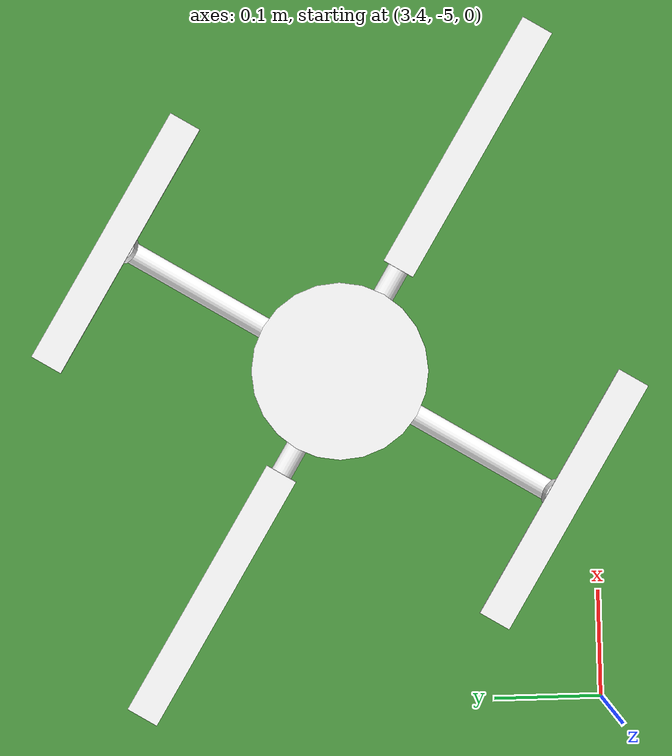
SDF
<sdf version="1.7">
 <world name="mrsim">
  <model name="ground_plane">
   <static>1</static>
   <link name="link">
    <collision name="collision">
     <geometry><plane><normal>0 0 1</normal><size>5000 5000</size></plane></geometry>
     <surface><friction><ode><mu>1</mu><mu2>1</mu2></ode></friction></surface>
    </collision>
    <visual name="grass">
     <cast_shadows>0</cast_shadows>
     <geometry><plane><normal>0 0 1</normal><size>5000 5000</size></plane></geometry>
     <material>
      <script><uri>file://media/materials/scripts/gazebo.material</uri><name>Gazebo/Grass</name></script>
     </material>
    </visual>
   </link>
  </model>
  <model name="quad1">
   <link name="base">
    <inertial>
     <mass>1</mass>
     <inertia><ixx>0.015</ixx><ixy>0</ixy><ixz>0</ixz><iyy>0.015</iyy><iyz>0</iyz><izz>0.007</izz></inertia>
    </inertial>
    <collision name="base">
     <geometry><cylinder><radius>0.1</radius><length>0.05</length></cylinder></geometry>
    </collision>
    <collision name="land_1">
     <pose>0.1 0 0 0 -0 0</pose>
     <geometry><sphere><radius>0.03</radius></sphere></geometry>
    </collision>
    <collision name="land_2">
     <pose>-0.05 0.086 0 0 -0 0</pose>
     <geometry><sphere><radius>0.03</radius></sphere></geometry>
    </collision>
    <collision name="land_3">
     <pose>-0.05 -0.086 0 0 -0 0</pose>
     <geometry><sphere><radius>0.03</radius></sphere></geometry>
    </collision>
    <visual name="body">
     <geometry><cylinder><radius>0.08</radius><length>0.05</length></cylinder></geometry>
     <material><ambient>1 0.6 0.4 1</ambient><diffuse>1 1 1 1</diffuse></material>
    </visual>
    <visual name="arm-1">
     <pose>0.125 0 0 3.14159 1.57079 3.14159</pose>
     <geometry><cylinder><radius>0.01</radius><length>0.25</length></cylinder></geometry>
     <material><ambient>1 0.4 0.4 1</ambient><diffuse>1 1 1 1</diffuse></material>
    </visual>
    <visual name="arm-2">
     <pose>0 0.125 0 3.14159 1.57079 -1.57079</pose>
     <geometry><cylinder><radius>0.01</radius><length>0.25</length></cylinder></geometry>
     <material><ambient>0.6 0.6 0.6 1</ambient><diffuse>1 1 1 1</diffuse></material>
    </visual>
    <visual name="arm-3">
     <pose>-0.125 0 0 3.14159 1.57079 3.14159</pose>
     <geometry><cylinder><radius>0.01</radius><length>0.25</length></cylinder></geometry>
     <material><ambient>0.6 0.6 0.6 1</ambient><diffuse>1 1 1 1</diffuse></material>
    </visual>
    <visual name="arm-4">
     <pose>0 -0.125 0 3.14159 1.57079 -1.57079</pose>
     <geometry><cylinder><radius>0.01</radius><length>0.25</length></cylinder></geometry>
     <material><ambient>0.6 0.6 0.6 1</ambient><diffuse>1 1 1 1</diffuse></material>
    </visual>
   </link>
   <frame name="rotor-1::__model__" attached_to="rotor-1::propeller">
    <pose relative_to="__model__">0.23 0 0 0 -0 0</pose>
   </frame>
   <link name="rotor-1::propeller">
    <inertial>
     <mass>0.07</mass>
     <inertia><ixx>4e-05</ixx><ixy>0</ixy><ixz>0</ixz><iyy>4e-05</iyy><iyz>0</iyz><izz>8e-05</izz></inertia>
    </inertial>
    <collision name="collision">
     <pose>0 0 0.04 0 -0 0</pose>
     <geometry><cylinder><radius>0.127</radius><length>0.002</length></cylinder></geometry>
    </collision>
    <visual name="motor">
     <pose>0 0 0.015 0 -0 0</pose>
     <geometry><cylinder><radius>0.015</radius><length>0.03</length></cylinder></geometry>
     <material><ambient>0.1 0.1 0.1 1</ambient><diffuse>1 1 1 1</diffuse></material>
    </visual>
    <visual name="axle">
     <pose>0 0 0.035 0 -0 0</pose>
     <geometry><cylinder><radius>0.002</radius><length>0.01</length></cylinder></geometry>
     <material><ambient>0.1 0.1 0.1 1</ambient><diffuse>1 1 1 1</diffuse></material>
    </visual>
    <visual name="blade">
     <pose>0 0 0.04 0 -0 0</pose>
     <geometry><box><size>0.25 0.03 0.002</size></box></geometry>
     <material><ambient>0.1 0.1 0.1 1</ambient><diffuse>1 1 1 1</diffuse></material>
    </visual>
    <pose relative_to="rotor-1::__model__">0 0 0 0 -0 0</pose>
   </link>
   <joint name="rotor-1" type="revolute">
    <parent>base</parent>
    <child>rotor-1::propeller</child>
    <axis>
     <xyz>0 0 1</xyz>
     <limit><lower>-1e+16</lower><upper>1e+16</upper></limit>
     <dynamics><spring_reference>0</spring_reference><spring_stiffness>0</spring_stiffness></dynamics>
    </axis>
   </joint>
   <frame name="rotor-2::__model__" attached_to="rotor-2::propeller">
    <pose relative_to="__model__">0 0.23 0 0 -0 0</pose>
   </frame>
   <link name="rotor-2::propeller">
    <inertial>
     <mass>0.07</mass>
     <inertia><ixx>4e-05</ixx><ixy>0</ixy><ixz>0</ixz><iyy>4e-05</iyy><iyz>0</iyz><izz>8e-05</izz></inertia>
    </inertial>
    <collision name="collision">
     <pose>0 0 0.04 0 -0 0</pose>
     <geometry><cylinder><radius>0.127</radius><length>0.002</length></cylinder></geometry>
    </collision>
    <visual name="motor">
     <pose>0 0 0.015 0 -0 0</pose>
     <geometry><cylinder><radius>0.015</radius><length>0.03</length></cylinder></geometry>
     <material><ambient>0.1 0.1 0.1 1</ambient><diffuse>1 1 1 1</diffuse></material>
    </visual>
    <visual name="axle">
     <pose>0 0 0.035 0 -0 0</pose>
     <geometry><cylinder><radius>0.002</radius><length>0.01</length></cylinder></geometry>
     <material><ambient>0.1 0.1 0.1 1</ambient><diffuse>1 1 1 1</diffuse></material>
    </visual>
    <visual name="blade">
     <pose>0 0 0.04 0 -0 0</pose>
     <geometry><box><size>0.25 0.03 0.002</size></box></geometry>
     <material><ambient>0.1 0.1 0.1 1</ambient><diffuse>1 1 1 1</diffuse></material>
    </visual>
    <pose relative_to="rotor-2::__model__">0 0 0 0 -0 0</pose>
   </link>
   <joint name="rotor-2" type="revolute">
    <parent>base</parent>
    <child>rotor-2::propeller</child>
    <axis>
     <xyz>0 0 1</xyz>
     <limit><lower>-1e+16</lower><upper>1e+16</upper></limit>
     <dynamics><spring_reference>0</spring_reference><spring_stiffness>0</spring_stiffness></dynamics>
    </axis>
   </joint>
   <frame name="rotor-3::__model__" attached_to="rotor-3::propeller">
    <pose relative_to="__model__">-0.23 0 0 0 -0 0</pose>
   </frame>
   <link name="rotor-3::propeller">
    <inertial>
     <mass>0.07</mass>
     <inertia><ixx>4e-05</ixx><ixy>0</ixy><ixz>0</ixz><iyy>4e-05</iyy><iyz>0</iyz><izz>8e-05</izz></inertia>
    </inertial>
    <collision name="collision">
     <pose>0 0 0.04 0 -0 0</pose>
     <geometry><cylinder><radius>0.127</radius><length>0.002</length></cylinder></geometry>
    </collision>
    <visual name="motor">
     <pose>0 0 0.015 0 -0 0</pose>
     <geometry><cylinder><radius>0.015</radius><length>0.03</length></cylinder></geometry>
     <material><ambient>0.1 0.1 0.1 1</ambient><diffuse>1 1 1 1</diffuse></material>
    </visual>
    <visual name="axle">
     <pose>0 0 0.035 0 -0 0</pose>
     <geometry><cylinder><radius>0.002</radius><length>0.01</length></cylinder></geometry>
     <material><ambient>0.1 0.1 0.1 1</ambient><diffuse>1 1 1 1</diffuse></material>
    </visual>
    <visual name="blade">
     <pose>0 0 0.04 0 -0 0</pose>
     <geometry><box><size>0.25 0.03 0.002</size></box></geometry>
     <material><ambient>0.1 0.1 0.1 1</ambient><diffuse>1 1 1 1</diffuse></material>
    </visual>
    <pose relative_to="rotor-3::__model__">0 0 0 0 -0 0</pose>
   </link>
   <joint name="rotor-3" type="revolute">
    <parent>base</parent>
    <child>rotor-3::propeller</child>
    <axis>
     <xyz>0 0 1</xyz>
     <limit><lower>-1e+16</lower><upper>1e+16</upper></limit>
     <dynamics><spring_reference>0</spring_reference><spring_stiffness>0</spring_stiffness></dynamics>
    </axis>
   </joint>
   <frame name="rotor-4::__model__" attached_to="rotor-4::propeller">
    <pose relative_to="__model__">0 -0.23 0 0 -0 0</pose>
   </frame>
   <link name="rotor-4::propeller">
    <inertial>
     <mass>0.07</mass>
     <inertia><ixx>4e-05</ixx><ixy>0</ixy><ixz>0</ixz><iyy>4e-05</iyy><iyz>0</iyz><izz>8e-05</izz></inertia>
    </inertial>
    <collision name="collision">
     <pose>0 0 0.04 0 -0 0</pose>
     <geometry><cylinder><radius>0.127</radius><length>0.002</length></cylinder></geometry>
    </collision>
    <visual name="motor">
     <pose>0 0 0.015 0 -0 0</pose>
     <geometry><cylinder><radius>0.015</radius><length>0.03</length></cylinder></geometry>
     <material><ambient>0.1 0.1 0.1 1</ambient><diffuse>1 1 1 1</diffuse></material>
    </visual>
    <visual name="axle">
     <pose>0 0 0.035 0 -0 0</pose>
     <geometry><cylinder><radius>0.002</radius><length>0.01</length></cylinder></geometry>
     <material><ambient>0.1 0.1 0.1 1</ambient><diffuse>1 1 1 1</diffuse></material>
    </visual>
    <visual name="blade">
     <pose>0 0 0.04 0 -0 0</pose>
     <geometry><box><size>0.25 0.03 0.002</size></box></geometry>
     <material><ambient>0.1 0.1 0.1 1</ambient><diffuse>1 1 1 1</diffuse></material>
    </visual>
    <pose relative_to="rotor-4::__model__">0 0 0 0 -0 0</pose>
   </link>
   <joint name="rotor-4" type="revolute">
    <parent>base</parent>
    <child>rotor-4::propeller</child>
    <axis>
     <xyz>0 0 1</xyz>
     <limit><lower>-1e+16</lower><upper>1e+16</upper></limit>
     <dynamics><spring_reference>0</spring_reference><spring_stiffness>0</spring_stiffness></dynamics>
    </axis>
   </joint>
   <link name="down_camera_link">
    <pose>0 0 0 3.14159 1.57079 3.14159</pose>
    <inertial>
     <mass>0.001</mass>
     <inertia>
      <ixx>3.2061e-05</ixx>
      <ixy>-1.169e-08</ixy>
      <ixz>-4.2601e-10</ixz>
      <iyy>3.0815e-05</iyy>
      <iyz>5.2182e-10</iyz>
      <izz>5.1652e-06</izz>
     </inertia>
    </inertial>
    <visual name="down_camera_visual">
     <geometry><cylinder><radius>0.02</radius><length>0.04</length></cylinder></geometry>
     <material><ambient>0.1 0.1 0.1 1</ambient><diffuse>1 1 1 1</diffuse></material>
    </visual>
    <sensor name="down_camera" type="camera">
     <camera>
      <horizontal_fov>1.2</horizontal_fov>
      <image><format>R8G8B8</format><width>640</width><height>480</height></image>
      <clip><near>0.05</near><far>15000</far></clip>
     </camera>
     <always_on>1</always_on>
     <update_rate>10</update_rate>
    </sensor>
   </link>
   <joint name="down_camera_joint" type="fixed">
    <child>down_camera_link</child>
    <parent>base</parent>
    <axis><xyz>1 0 0</xyz><limit><lower>-1e+16</lower><upper>1e+16</upper></limit></axis>
   </joint>
   <plugin name="mrsim" filename="mrsim-gazebo.so">
    <link>base</link>
    <rotors>
     <noise>0.03</noise>
     <cf>6.5e-4</cf>
     <ct>1e-5</ct>
     <rotor><joint spin="cw">rotor-1</joint></rotor>
     <rotor><joint spin="ccw">rotor-2</joint></rotor>
     <rotor><joint spin="cw">rotor-3</joint></rotor>
     <rotor><joint spin="ccw">rotor-4</joint></rotor>
    </rotors>
   </plugin>
   <pose>3.71262 -4.76253 0.03 0 -0 -0.54698</pose>
  </model>
 </world>
</sdf>
